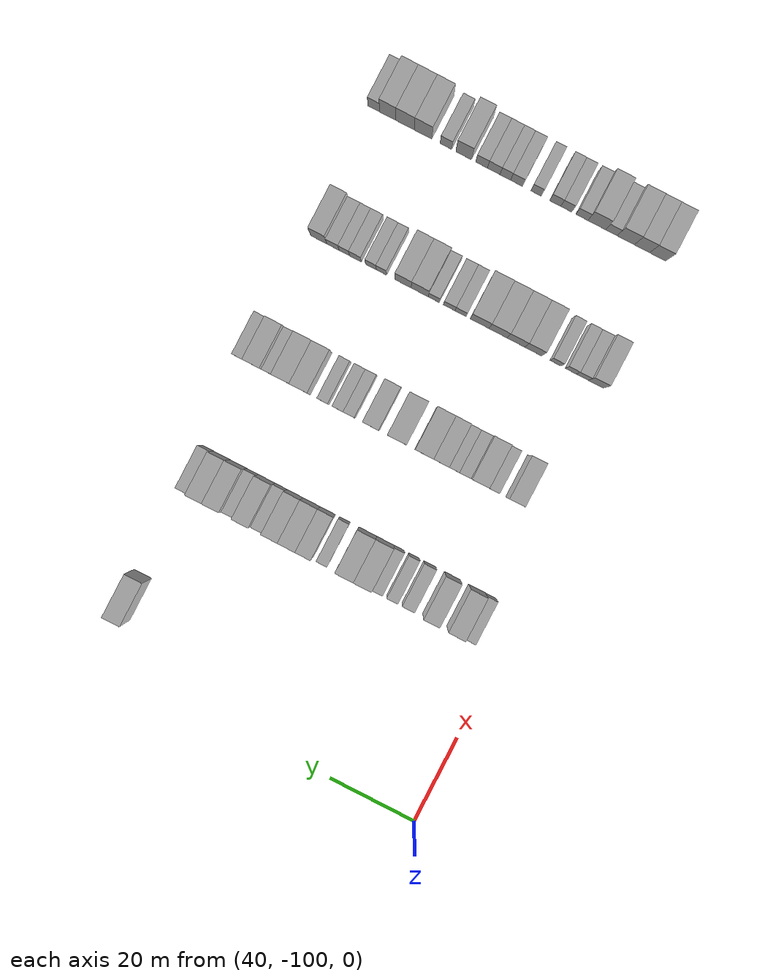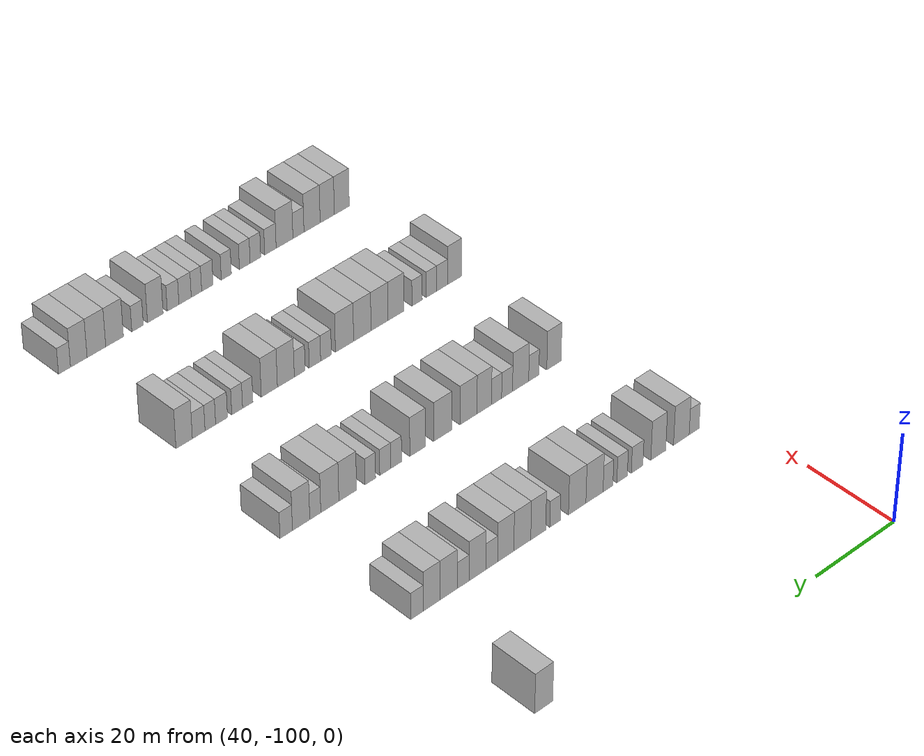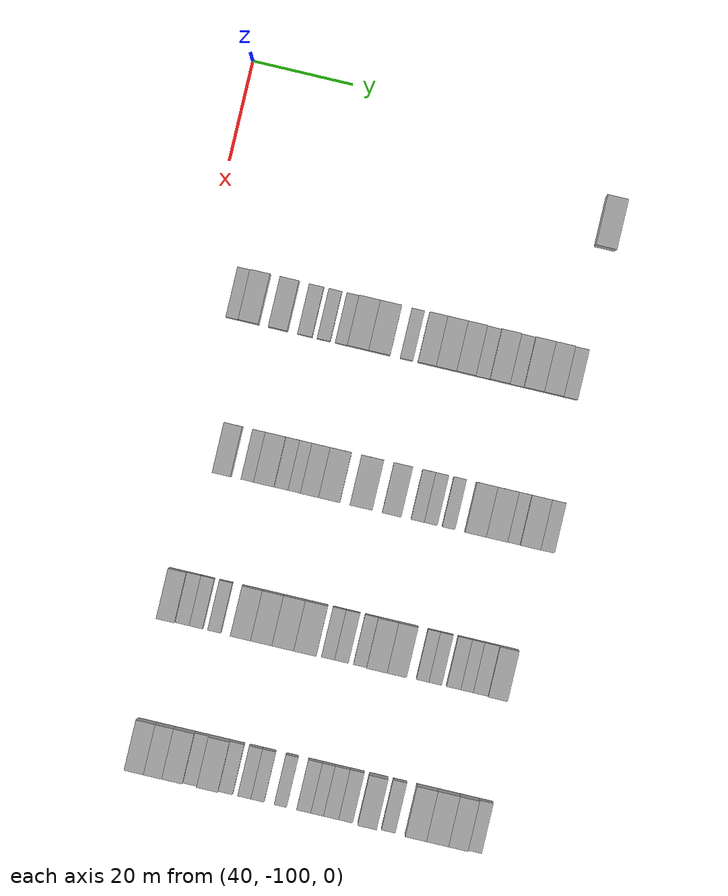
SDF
<sdf version="1.6">
 <world name="default">
  <model name="building_336">
   <static>1</static>
   <pose>55.0000 -24.7894 0 0.000000 0.000000 0.000000</pose>
   <link name="link">
    <pose>0 0 4.50 0 0 0</pose>
    <collision name="collision"><geometry><box><size>10.0000 4.1564 9.0000</size></box></geometry></collision>
    <visual name="visual">
     <cast_shadows>0</cast_shadows>
     <geometry><box><size>10.0000 4.1564 9.0000</size></box></geometry>
     <material>
      <script>
       <uri>model://HANNAS_wall/materials/scripts</uri>
       <uri>model://HANNAS_wall/materials/textures</uri>
       <name>vrc/HANNAS_wall</name>
      </script>
     </material>
    </visual>
   </link>
  </model>
  <model name="building_553">
   <static>1</static>
   <pose>85.0000 -92.2404 0 0.000000 0.000000 0.000000</pose>
   <link name="link">
    <pose>0 0 3.00 0 0 0</pose>
    <collision name="collision"><geometry><box><size>10.0000 2.5375 6.0000</size></box></geometry></collision>
    <visual name="visual">
     <cast_shadows>0</cast_shadows>
     <geometry><box><size>10.0000 2.5375 6.0000</size></box></geometry>
     <material>
      <script>
       <uri>model://HANNAS_wall/materials/scripts</uri>
       <uri>model://HANNAS_wall/materials/textures</uri>
       <name>vrc/HANNAS_wall</name>
      </script>
     </material>
    </visual>
   </link>
  </model>
  <model name="building_554">
   <static>1</static>
   <pose>85.0000 -88.9744 0 0.000000 0.000000 0.000000</pose>
   <link name="link">
    <pose>0 0 4.50 0 0 0</pose>
    <collision name="collision"><geometry><box><size>10.0000 3.9943 9.0000</size></box></geometry></collision>
    <visual name="visual">
     <cast_shadows>0</cast_shadows>
     <geometry><box><size>10.0000 3.9943 9.0000</size></box></geometry>
     <material>
      <script>
       <uri>model://HANNAS_wall/materials/scripts</uri>
       <uri>model://HANNAS_wall/materials/textures</uri>
       <name>vrc/HANNAS_wall</name>
      </script>
     </material>
    </visual>
   </link>
  </model>
  <model name="building_555">
   <static>1</static>
   <pose>85.0000 -83.0957 0 0.000000 0.000000 0.000000</pose>
   <link name="link">
    <pose>0 0 4.50 0 0 0</pose>
    <collision name="collision"><geometry><box><size>10.0000 3.7630 9.0000</size></box></geometry></collision>
    <visual name="visual">
     <cast_shadows>0</cast_shadows>
     <geometry><box><size>10.0000 3.7630 9.0000</size></box></geometry>
     <material>
      <script>
       <uri>model://HANNAS_wall/materials/scripts</uri>
       <uri>model://HANNAS_wall/materials/textures</uri>
       <name>vrc/HANNAS_wall</name>
      </script>
     </material>
    </visual>
   </link>
  </model>
  <model name="building_556">
   <static>1</static>
   <pose>85.0000 -77.7588 0 0.000000 0.000000 0.000000</pose>
   <link name="link">
    <pose>0 0 3.00 0 0 0</pose>
    <collision name="collision"><geometry><box><size>10.0000 2.9109 6.0000</size></box></geometry></collision>
    <visual name="visual">
     <cast_shadows>0</cast_shadows>
     <geometry><box><size>10.0000 2.9109 6.0000</size></box></geometry>
     <material>
      <script>
       <uri>model://HANNAS_wall/materials/scripts</uri>
       <uri>model://HANNAS_wall/materials/textures</uri>
       <name>vrc/HANNAS_wall</name>
      </script>
     </material>
    </visual>
   </link>
  </model>
  <model name="building_557">
   <static>1</static>
   <pose>85.0000 -73.9956 0 0.000000 0.000000 0.000000</pose>
   <link name="link">
    <pose>0 0 3.00 0 0 0</pose>
    <collision name="collision"><geometry><box><size>10.0000 2.6154 6.0000</size></box></geometry></collision>
    <visual name="visual">
     <cast_shadows>0</cast_shadows>
     <geometry><box><size>10.0000 2.6154 6.0000</size></box></geometry>
     <material>
      <script>
       <uri>model://HANNAS_wall/materials/scripts</uri>
       <uri>model://HANNAS_wall/materials/textures</uri>
       <name>vrc/HANNAS_wall</name>
      </script>
     </material>
    </visual>
   </link>
  </model>
  <model name="building_558">
   <static>1</static>
   <pose>85.0000 -70.4703 0 0.000000 0.000000 0.000000</pose>
   <link name="link">
    <pose>0 0 3.00 0 0 0</pose>
    <collision name="collision"><geometry><box><size>10.0000 2.4352 6.0000</size></box></geometry></collision>
    <visual name="visual">
     <cast_shadows>0</cast_shadows>
     <geometry><box><size>10.0000 2.4352 6.0000</size></box></geometry>
     <material>
      <script>
       <uri>model://HANNAS_wall/materials/scripts</uri>
       <uri>model://HANNAS_wall/materials/textures</uri>
       <name>vrc/HANNAS_wall</name>
      </script>
     </material>
    </visual>
   </link>
  </model>
  <model name="building_559">
   <static>1</static>
   <pose>85.0000 -67.1309 0 0.000000 0.000000 0.000000</pose>
   <link name="link">
    <pose>0 0 4.50 0 0 0</pose>
    <collision name="collision"><geometry><box><size>10.0000 4.2436 9.0000</size></box></geometry></collision>
    <visual name="visual">
     <cast_shadows>0</cast_shadows>
     <geometry><box><size>10.0000 4.2436 9.0000</size></box></geometry>
     <material>
      <script>
       <uri>model://HANNAS_wall/materials/scripts</uri>
       <uri>model://HANNAS_wall/materials/textures</uri>
       <name>vrc/HANNAS_wall</name>
      </script>
     </material>
    </visual>
   </link>
  </model>
  <model name="building_560">
   <static>1</static>
   <pose>85.0000 -62.8690 0 0.000000 0.000000 0.000000</pose>
   <link name="link">
    <pose>0 0 4.50 0 0 0</pose>
    <collision name="collision"><geometry><box><size>10.0000 4.2803 9.0000</size></box></geometry></collision>
    <visual name="visual">
     <cast_shadows>0</cast_shadows>
     <geometry><box><size>10.0000 4.2803 9.0000</size></box></geometry>
     <material>
      <script>
       <uri>model://HANNAS_wall/materials/scripts</uri>
       <uri>model://HANNAS_wall/materials/textures</uri>
       <name>vrc/HANNAS_wall</name>
      </script>
     </material>
    </visual>
   </link>
  </model>
  <model name="building_561">
   <static>1</static>
   <pose>85.0000 -57.4591 0 0.000000 0.000000 0.000000</pose>
   <link name="link">
    <pose>0 0 3.00 0 0 0</pose>
    <collision name="collision"><geometry><box><size>10.0000 2.5393 6.0000</size></box></geometry></collision>
    <visual name="visual">
     <cast_shadows>0</cast_shadows>
     <geometry><box><size>10.0000 2.5393 6.0000</size></box></geometry>
     <material>
      <script>
       <uri>model://HANNAS_wall/materials/scripts</uri>
       <uri>model://HANNAS_wall/materials/textures</uri>
       <name>vrc/HANNAS_wall</name>
      </script>
     </material>
    </visual>
   </link>
  </model>
  <model name="building_562">
   <static>1</static>
   <pose>85.0000 -53.3812 0 0.000000 0.000000 0.000000</pose>
   <link name="link">
    <pose>0 0 4.50 0 0 0</pose>
    <collision name="collision"><geometry><box><size>10.0000 3.6165 9.0000</size></box></geometry></collision>
    <visual name="visual">
     <cast_shadows>0</cast_shadows>
     <geometry><box><size>10.0000 3.6165 9.0000</size></box></geometry>
     <material>
      <script>
       <uri>model://HANNAS_wall/materials/scripts</uri>
       <uri>model://HANNAS_wall/materials/textures</uri>
       <name>vrc/HANNAS_wall</name>
      </script>
     </material>
    </visual>
   </link>
  </model>
  <model name="building_563">
   <static>1</static>
   <pose>85.0000 -49.5403 0 0.000000 0.000000 0.000000</pose>
   <link name="link">
    <pose>0 0 4.50 0 0 0</pose>
    <collision name="collision"><geometry><box><size>10.0000 4.0652 9.0000</size></box></geometry></collision>
    <visual name="visual">
     <cast_shadows>0</cast_shadows>
     <geometry><box><size>10.0000 4.0652 9.0000</size></box></geometry>
     <material>
      <script>
       <uri>model://HANNAS_wall/materials/scripts</uri>
       <uri>model://HANNAS_wall/materials/textures</uri>
       <name>vrc/HANNAS_wall</name>
      </script>
     </material>
    </visual>
   </link>
  </model>
  <model name="building_564">
   <static>1</static>
   <pose>85.0000 -45.5871 0 0.000000 0.000000 0.000000</pose>
   <link name="link">
    <pose>0 0 4.50 0 0 0</pose>
    <collision name="collision"><geometry><box><size>10.0000 3.8412 9.0000</size></box></geometry></collision>
    <visual name="visual">
     <cast_shadows>0</cast_shadows>
     <geometry><box><size>10.0000 3.8412 9.0000</size></box></geometry>
     <material>
      <script>
       <uri>model://HANNAS_wall/materials/scripts</uri>
       <uri>model://HANNAS_wall/materials/textures</uri>
       <name>vrc/HANNAS_wall</name>
      </script>
     </material>
    </visual>
   </link>
  </model>
  <model name="building_565">
   <static>1</static>
   <pose>85.0000 -42.2479 0 0.000000 0.000000 0.000000</pose>
   <link name="link">
    <pose>0 0 3.00 0 0 0</pose>
    <collision name="collision"><geometry><box><size>10.0000 2.8373 6.0000</size></box></geometry></collision>
    <visual name="visual">
     <cast_shadows>0</cast_shadows>
     <geometry><box><size>10.0000 2.8373 6.0000</size></box></geometry>
     <material>
      <script>
       <uri>model://HANNAS_wall/materials/scripts</uri>
       <uri>model://HANNAS_wall/materials/textures</uri>
       <name>vrc/HANNAS_wall</name>
      </script>
     </material>
    </visual>
   </link>
  </model>
  <model name="building_566">
   <static>1</static>
   <pose>85.0000 -38.8470 0 0.000000 0.000000 0.000000</pose>
   <link name="link">
    <pose>0 0 4.50 0 0 0</pose>
    <collision name="collision"><geometry><box><size>10.0000 3.9645 9.0000</size></box></geometry></collision>
    <visual name="visual">
     <cast_shadows>0</cast_shadows>
     <geometry><box><size>10.0000 3.9645 9.0000</size></box></geometry>
     <material>
      <script>
       <uri>model://HANNAS_wall/materials/scripts</uri>
       <uri>model://HANNAS_wall/materials/textures</uri>
       <name>vrc/HANNAS_wall</name>
      </script>
     </material>
    </visual>
   </link>
  </model>
  <model name="building_567">
   <static>1</static>
   <pose>85.0000 -35.4615 0 0.000000 0.000000 0.000000</pose>
   <link name="link">
    <pose>0 0 3.00 0 0 0</pose>
    <collision name="collision"><geometry><box><size>10.0000 2.8064 6.0000</size></box></geometry></collision>
    <visual name="visual">
     <cast_shadows>0</cast_shadows>
     <geometry><box><size>10.0000 2.8064 6.0000</size></box></geometry>
     <material>
      <script>
       <uri>model://HANNAS_wall/materials/scripts</uri>
       <uri>model://HANNAS_wall/materials/textures</uri>
       <name>vrc/HANNAS_wall</name>
      </script>
     </material>
    </visual>
   </link>
  </model>
  <model name="building_568">
   <static>1</static>
   <pose>85.0000 -32.0500 0 0.000000 0.000000 0.000000</pose>
   <link name="link">
    <pose>0 0 4.50 0 0 0</pose>
    <collision name="collision"><geometry><box><size>10.0000 4.0165 9.0000</size></box></geometry></collision>
    <visual name="visual">
     <cast_shadows>0</cast_shadows>
     <geometry><box><size>10.0000 4.0165 9.0000</size></box></geometry>
     <material>
      <script>
       <uri>model://HANNAS_wall/materials/scripts</uri>
       <uri>model://HANNAS_wall/materials/textures</uri>
       <name>vrc/HANNAS_wall</name>
      </script>
     </material>
    </visual>
   </link>
  </model>
  <model name="building_569">
   <static>1</static>
   <pose>85.0000 -28.1025 0 0.000000 0.000000 0.000000</pose>
   <link name="link">
    <pose>0 0 4.50 0 0 0</pose>
    <collision name="collision"><geometry><box><size>10.0000 3.8787 9.0000</size></box></geometry></collision>
    <visual name="visual">
     <cast_shadows>0</cast_shadows>
     <geometry><box><size>10.0000 3.8787 9.0000</size></box></geometry>
     <material>
      <script>
       <uri>model://HANNAS_wall/materials/scripts</uri>
       <uri>model://HANNAS_wall/materials/textures</uri>
       <name>vrc/HANNAS_wall</name>
      </script>
     </material>
    </visual>
   </link>
  </model>
  <model name="building_570">
   <static>1</static>
   <pose>85.0000 -24.7309 0 0.000000 0.000000 0.000000</pose>
   <link name="link">
    <pose>0 0 3.00 0 0 0</pose>
    <collision name="collision"><geometry><box><size>10.0000 2.8644 6.0000</size></box></geometry></collision>
    <visual name="visual">
     <cast_shadows>0</cast_shadows>
     <geometry><box><size>10.0000 2.8644 6.0000</size></box></geometry>
     <material>
      <script>
       <uri>model://HANNAS_wall/materials/scripts</uri>
       <uri>model://HANNAS_wall/materials/textures</uri>
       <name>vrc/HANNAS_wall</name>
      </script>
     </material>
    </visual>
   </link>
  </model>
  <model name="building_783">
   <static>1</static>
   <pose>115.0000 -87.2360 0 0.000000 0.000000 0.000000</pose>
   <link name="link">
    <pose>0 0 4.50 0 0 0</pose>
    <collision name="collision"><geometry><box><size>10.0000 3.6390 9.0000</size></box></geometry></collision>
    <visual name="visual">
     <cast_shadows>0</cast_shadows>
     <geometry><box><size>10.0000 3.6390 9.0000</size></box></geometry>
     <material>
      <script>
       <uri>model://HANNAS_wall/materials/scripts</uri>
       <uri>model://HANNAS_wall/materials/textures</uri>
       <name>vrc/HANNAS_wall</name>
      </script>
     </material>
    </visual>
   </link>
  </model>
  <model name="building_784">
   <static>1</static>
   <pose>115.0000 -82.1194 0 0.000000 0.000000 0.000000</pose>
   <link name="link">
    <pose>0 0 3.00 0 0 0</pose>
    <collision name="collision"><geometry><box><size>10.0000 2.5943 6.0000</size></box></geometry></collision>
    <visual name="visual">
     <cast_shadows>0</cast_shadows>
     <geometry><box><size>10.0000 2.5943 6.0000</size></box></geometry>
     <material>
      <script>
       <uri>model://HANNAS_wall/materials/scripts</uri>
       <uri>model://HANNAS_wall/materials/textures</uri>
       <name>vrc/HANNAS_wall</name>
      </script>
     </material>
    </visual>
   </link>
  </model>
  <model name="building_785">
   <static>1</static>
   <pose>115.0000 -78.7922 0 0.000000 0.000000 0.000000</pose>
   <link name="link">
    <pose>0 0 4.50 0 0 0</pose>
    <collision name="collision"><geometry><box><size>10.0000 4.0600 9.0000</size></box></geometry></collision>
    <visual name="visual">
     <cast_shadows>0</cast_shadows>
     <geometry><box><size>10.0000 4.0600 9.0000</size></box></geometry>
     <material>
      <script>
       <uri>model://HANNAS_wall/materials/scripts</uri>
       <uri>model://HANNAS_wall/materials/textures</uri>
       <name>vrc/HANNAS_wall</name>
      </script>
     </material>
    </visual>
   </link>
  </model>
  <model name="building_786">
   <static>1</static>
   <pose>115.0000 -75.3903 0 0.000000 0.000000 0.000000</pose>
   <link name="link">
    <pose>0 0 3.00 0 0 0</pose>
    <collision name="collision"><geometry><box><size>10.0000 2.7439 6.0000</size></box></geometry></collision>
    <visual name="visual">
     <cast_shadows>0</cast_shadows>
     <geometry><box><size>10.0000 2.7439 6.0000</size></box></geometry>
     <material>
      <script>
       <uri>model://HANNAS_wall/materials/scripts</uri>
       <uri>model://HANNAS_wall/materials/textures</uri>
       <name>vrc/HANNAS_wall</name>
      </script>
     </material>
    </visual>
   </link>
  </model>
  <model name="building_787">
   <static>1</static>
   <pose>115.0000 -72.7684 0 0.000000 0.000000 0.000000</pose>
   <link name="link">
    <pose>0 0 3.00 0 0 0</pose>
    <collision name="collision"><geometry><box><size>10.0000 2.4998 6.0000</size></box></geometry></collision>
    <visual name="visual">
     <cast_shadows>0</cast_shadows>
     <geometry><box><size>10.0000 2.4998 6.0000</size></box></geometry>
     <material>
      <script>
       <uri>model://HANNAS_wall/materials/scripts</uri>
       <uri>model://HANNAS_wall/materials/textures</uri>
       <name>vrc/HANNAS_wall</name>
      </script>
     </material>
    </visual>
   </link>
  </model>
  <model name="building_788">
   <static>1</static>
   <pose>115.0000 -69.7114 0 0.000000 0.000000 0.000000</pose>
   <link name="link">
    <pose>0 0 4.50 0 0 0</pose>
    <collision name="collision"><geometry><box><size>10.0000 3.6142 9.0000</size></box></geometry></collision>
    <visual name="visual">
     <cast_shadows>0</cast_shadows>
     <geometry><box><size>10.0000 3.6142 9.0000</size></box></geometry>
     <material>
      <script>
       <uri>model://HANNAS_wall/materials/scripts</uri>
       <uri>model://HANNAS_wall/materials/textures</uri>
       <name>vrc/HANNAS_wall</name>
      </script>
     </material>
    </visual>
   </link>
  </model>
  <model name="building_789">
   <static>1</static>
   <pose>115.0000 -65.7826 0 0.000000 0.000000 0.000000</pose>
   <link name="link">
    <pose>0 0 4.50 0 0 0</pose>
    <collision name="collision"><geometry><box><size>10.0000 4.2436 9.0000</size></box></geometry></collision>
    <visual name="visual">
     <cast_shadows>0</cast_shadows>
     <geometry><box><size>10.0000 4.2436 9.0000</size></box></geometry>
     <material>
      <script>
       <uri>model://HANNAS_wall/materials/scripts</uri>
       <uri>model://HANNAS_wall/materials/textures</uri>
       <name>vrc/HANNAS_wall</name>
      </script>
     </material>
    </visual>
   </link>
  </model>
  <model name="building_790">
   <static>1</static>
   <pose>115.0000 -59.4343 0 0.000000 0.000000 0.000000</pose>
   <link name="link">
    <pose>0 0 4.50 0 0 0</pose>
    <collision name="collision"><geometry><box><size>10.0000 4.4529 9.0000</size></box></geometry></collision>
    <visual name="visual">
     <cast_shadows>0</cast_shadows>
     <geometry><box><size>10.0000 4.4529 9.0000</size></box></geometry>
     <material>
      <script>
       <uri>model://HANNAS_wall/materials/scripts</uri>
       <uri>model://HANNAS_wall/materials/textures</uri>
       <name>vrc/HANNAS_wall</name>
      </script>
     </material>
    </visual>
   </link>
  </model>
  <model name="building_791">
   <static>1</static>
   <pose>115.0000 -53.3348 0 0.000000 0.000000 0.000000</pose>
   <link name="link">
    <pose>0 0 4.50 0 0 0</pose>
    <collision name="collision"><geometry><box><size>10.0000 3.7462 9.0000</size></box></geometry></collision>
    <visual name="visual">
     <cast_shadows>0</cast_shadows>
     <geometry><box><size>10.0000 3.7462 9.0000</size></box></geometry>
     <material>
      <script>
       <uri>model://HANNAS_wall/materials/scripts</uri>
       <uri>model://HANNAS_wall/materials/textures</uri>
       <name>vrc/HANNAS_wall</name>
      </script>
     </material>
    </visual>
   </link>
  </model>
  <model name="building_792">
   <static>1</static>
   <pose>115.0000 -48.1525 0 0.000000 0.000000 0.000000</pose>
   <link name="link">
    <pose>0 0 3.00 0 0 0</pose>
    <collision name="collision"><geometry><box><size>10.0000 2.6183 6.0000</size></box></geometry></collision>
    <visual name="visual">
     <cast_shadows>0</cast_shadows>
     <geometry><box><size>10.0000 2.6183 6.0000</size></box></geometry>
     <material>
      <script>
       <uri>model://HANNAS_wall/materials/scripts</uri>
       <uri>model://HANNAS_wall/materials/textures</uri>
       <name>vrc/HANNAS_wall</name>
      </script>
     </material>
    </visual>
   </link>
  </model>
  <model name="building_793">
   <static>1</static>
   <pose>115.0000 -45.5397 0 0.000000 0.000000 0.000000</pose>
   <link name="link">
    <pose>0 0 3.00 0 0 0</pose>
    <collision name="collision"><geometry><box><size>10.0000 2.6074 6.0000</size></box></geometry></collision>
    <visual name="visual">
     <cast_shadows>0</cast_shadows>
     <geometry><box><size>10.0000 2.6074 6.0000</size></box></geometry>
     <material>
      <script>
       <uri>model://HANNAS_wall/materials/scripts</uri>
       <uri>model://HANNAS_wall/materials/textures</uri>
       <name>vrc/HANNAS_wall</name>
      </script>
     </material>
    </visual>
   </link>
  </model>
  <model name="building_794">
   <static>1</static>
   <pose>115.0000 -41.9731 0 0.000000 0.000000 0.000000</pose>
   <link name="link">
    <pose>0 0 3.00 0 0 0</pose>
    <collision name="collision"><geometry><box><size>10.0000 2.5257 6.0000</size></box></geometry></collision>
    <visual name="visual">
     <cast_shadows>0</cast_shadows>
     <geometry><box><size>10.0000 2.5257 6.0000</size></box></geometry>
     <material>
      <script>
       <uri>model://HANNAS_wall/materials/scripts</uri>
       <uri>model://HANNAS_wall/materials/textures</uri>
       <name>vrc/HANNAS_wall</name>
      </script>
     </material>
    </visual>
   </link>
  </model>
  <model name="building_795">
   <static>1</static>
   <pose>115.0000 -36.6240 0 0.000000 0.000000 0.000000</pose>
   <link name="link">
    <pose>0 0 4.50 0 0 0</pose>
    <collision name="collision"><geometry><box><size>10.0000 4.1725 9.0000</size></box></geometry></collision>
    <visual name="visual">
     <cast_shadows>0</cast_shadows>
     <geometry><box><size>10.0000 4.1725 9.0000</size></box></geometry>
     <material>
      <script>
       <uri>model://HANNAS_wall/materials/scripts</uri>
       <uri>model://HANNAS_wall/materials/textures</uri>
       <name>vrc/HANNAS_wall</name>
      </script>
     </material>
    </visual>
   </link>
  </model>
  <model name="building_796">
   <static>1</static>
   <pose>115.0000 -32.4187 0 0.000000 0.000000 0.000000</pose>
   <link name="link">
    <pose>0 0 4.50 0 0 0</pose>
    <collision name="collision"><geometry><box><size>10.0000 4.2381 9.0000</size></box></geometry></collision>
    <visual name="visual">
     <cast_shadows>0</cast_shadows>
     <geometry><box><size>10.0000 4.2381 9.0000</size></box></geometry>
     <material>
      <script>
       <uri>model://HANNAS_wall/materials/scripts</uri>
       <uri>model://HANNAS_wall/materials/textures</uri>
       <name>vrc/HANNAS_wall</name>
      </script>
     </material>
    </visual>
   </link>
  </model>
  <model name="building_797">
   <static>1</static>
   <pose>115.0000 -29.0166 0 0.000000 0.000000 0.000000</pose>
   <link name="link">
    <pose>0 0 3.00 0 0 0</pose>
    <collision name="collision"><geometry><box><size>10.0000 2.5663 6.0000</size></box></geometry></collision>
    <visual name="visual">
     <cast_shadows>0</cast_shadows>
     <geometry><box><size>10.0000 2.5663 6.0000</size></box></geometry>
     <material>
      <script>
       <uri>model://HANNAS_wall/materials/scripts</uri>
       <uri>model://HANNAS_wall/materials/textures</uri>
       <name>vrc/HANNAS_wall</name>
      </script>
     </material>
    </visual>
   </link>
  </model>
  <model name="building_798">
   <static>1</static>
   <pose>115.0000 -25.7237 0 0.000000 0.000000 0.000000</pose>
   <link name="link">
    <pose>0 0 4.50 0 0 0</pose>
    <collision name="collision"><geometry><box><size>10.0000 4.0194 9.0000</size></box></geometry></collision>
    <visual name="visual">
     <cast_shadows>0</cast_shadows>
     <geometry><box><size>10.0000 4.0194 9.0000</size></box></geometry>
     <material>
      <script>
       <uri>model://HANNAS_wall/materials/scripts</uri>
       <uri>model://HANNAS_wall/materials/textures</uri>
       <name>vrc/HANNAS_wall</name>
      </script>
     </material>
    </visual>
   </link>
  </model>
  <model name="building_799">
   <static>1</static>
   <pose>115.0000 -22.2759 0 0.000000 0.000000 0.000000</pose>
   <link name="link">
    <pose>0 0 3.00 0 0 0</pose>
    <collision name="collision"><geometry><box><size>10.0000 2.8763 6.0000</size></box></geometry></collision>
    <visual name="visual">
     <cast_shadows>0</cast_shadows>
     <geometry><box><size>10.0000 2.8763 6.0000</size></box></geometry>
     <material>
      <script>
       <uri>model://HANNAS_wall/materials/scripts</uri>
       <uri>model://HANNAS_wall/materials/textures</uri>
       <name>vrc/HANNAS_wall</name>
      </script>
     </material>
    </visual>
   </link>
  </model>
  <model name="building_1022">
   <static>1</static>
   <pose>145.0000 -91.2712 0 0.000000 0.000000 0.000000</pose>
   <link name="link">
    <pose>0 0 4.50 0 0 0</pose>
    <collision name="collision"><geometry><box><size>10.0000 3.6379 9.0000</size></box></geometry></collision>
    <visual name="visual">
     <cast_shadows>0</cast_shadows>
     <geometry><box><size>10.0000 3.6379 9.0000</size></box></geometry>
     <material>
      <script>
       <uri>model://HANNAS_wall/materials/scripts</uri>
       <uri>model://HANNAS_wall/materials/textures</uri>
       <name>vrc/HANNAS_wall</name>
      </script>
     </material>
    </visual>
   </link>
  </model>
  <model name="building_1023">
   <static>1</static>
   <pose>145.0000 -88.0466 0 0.000000 0.000000 0.000000</pose>
   <link name="link">
    <pose>0 0 3.00 0 0 0</pose>
    <collision name="collision"><geometry><box><size>10.0000 2.8114 6.0000</size></box></geometry></collision>
    <visual name="visual">
     <cast_shadows>0</cast_shadows>
     <geometry><box><size>10.0000 2.8114 6.0000</size></box></geometry>
     <material>
      <script>
       <uri>model://HANNAS_wall/materials/scripts</uri>
       <uri>model://HANNAS_wall/materials/textures</uri>
       <name>vrc/HANNAS_wall</name>
      </script>
     </material>
    </visual>
   </link>
  </model>
  <model name="building_1024">
   <static>1</static>
   <pose>145.0000 -85.3098 0 0.000000 0.000000 0.000000</pose>
   <link name="link">
    <pose>0 0 3.00 0 0 0</pose>
    <collision name="collision"><geometry><box><size>10.0000 2.6621 6.0000</size></box></geometry></collision>
    <visual name="visual">
     <cast_shadows>0</cast_shadows>
     <geometry><box><size>10.0000 2.6621 6.0000</size></box></geometry>
     <material>
      <script>
       <uri>model://HANNAS_wall/materials/scripts</uri>
       <uri>model://HANNAS_wall/materials/textures</uri>
       <name>vrc/HANNAS_wall</name>
      </script>
     </material>
    </visual>
   </link>
  </model>
  <model name="building_1025">
   <static>1</static>
   <pose>145.0000 -81.6724 0 0.000000 0.000000 0.000000</pose>
   <link name="link">
    <pose>0 0 3.00 0 0 0</pose>
    <collision name="collision"><geometry><box><size>10.0000 2.6126 6.0000</size></box></geometry></collision>
    <visual name="visual">
     <cast_shadows>0</cast_shadows>
     <geometry><box><size>10.0000 2.6126 6.0000</size></box></geometry>
     <material>
      <script>
       <uri>model://HANNAS_wall/materials/scripts</uri>
       <uri>model://HANNAS_wall/materials/textures</uri>
       <name>vrc/HANNAS_wall</name>
      </script>
     </material>
    </visual>
   </link>
  </model>
  <model name="building_1026">
   <static>1</static>
   <pose>145.0000 -76.3474 0 0.000000 0.000000 0.000000</pose>
   <link name="link">
    <pose>0 0 4.50 0 0 0</pose>
    <collision name="collision"><geometry><box><size>10.0000 4.0376 9.0000</size></box></geometry></collision>
    <visual name="visual">
     <cast_shadows>0</cast_shadows>
     <geometry><box><size>10.0000 4.0376 9.0000</size></box></geometry>
     <material>
      <script>
       <uri>model://HANNAS_wall/materials/scripts</uri>
       <uri>model://HANNAS_wall/materials/textures</uri>
       <name>vrc/HANNAS_wall</name>
      </script>
     </material>
    </visual>
   </link>
  </model>
  <model name="building_1027">
   <static>1</static>
   <pose>145.0000 -72.2160 0 0.000000 0.000000 0.000000</pose>
   <link name="link">
    <pose>0 0 4.50 0 0 0</pose>
    <collision name="collision"><geometry><box><size>10.0000 4.2252 9.0000</size></box></geometry></collision>
    <visual name="visual">
     <cast_shadows>0</cast_shadows>
     <geometry><box><size>10.0000 4.2252 9.0000</size></box></geometry>
     <material>
      <script>
       <uri>model://HANNAS_wall/materials/scripts</uri>
       <uri>model://HANNAS_wall/materials/textures</uri>
       <name>vrc/HANNAS_wall</name>
      </script>
     </material>
    </visual>
   </link>
  </model>
  <model name="building_1028">
   <static>1</static>
   <pose>145.0000 -67.9359 0 0.000000 0.000000 0.000000</pose>
   <link name="link">
    <pose>0 0 4.50 0 0 0</pose>
    <collision name="collision"><geometry><box><size>10.0000 4.3350 9.0000</size></box></geometry></collision>
    <visual name="visual">
     <cast_shadows>0</cast_shadows>
     <geometry><box><size>10.0000 4.3350 9.0000</size></box></geometry>
     <material>
      <script>
       <uri>model://HANNAS_wall/materials/scripts</uri>
       <uri>model://HANNAS_wall/materials/textures</uri>
       <name>vrc/HANNAS_wall</name>
      </script>
     </material>
    </visual>
   </link>
  </model>
  <model name="building_1029">
   <static>1</static>
   <pose>145.0000 -63.5243 0 0.000000 0.000000 0.000000</pose>
   <link name="link">
    <pose>0 0 4.50 0 0 0</pose>
    <collision name="collision"><geometry><box><size>10.0000 4.4882 9.0000</size></box></geometry></collision>
    <visual name="visual">
     <cast_shadows>0</cast_shadows>
     <geometry><box><size>10.0000 4.4882 9.0000</size></box></geometry>
     <material>
      <script>
       <uri>model://HANNAS_wall/materials/scripts</uri>
       <uri>model://HANNAS_wall/materials/textures</uri>
       <name>vrc/HANNAS_wall</name>
      </script>
     </material>
    </visual>
   </link>
  </model>
  <model name="building_1030">
   <static>1</static>
   <pose>145.0000 -58.9701 0 0.000000 0.000000 0.000000</pose>
   <link name="link">
    <pose>0 0 3.00 0 0 0</pose>
    <collision name="collision"><geometry><box><size>10.0000 2.6203 6.0000</size></box></geometry></collision>
    <visual name="visual">
     <cast_shadows>0</cast_shadows>
     <geometry><box><size>10.0000 2.6203 6.0000</size></box></geometry>
     <material>
      <script>
       <uri>model://HANNAS_wall/materials/scripts</uri>
       <uri>model://HANNAS_wall/materials/textures</uri>
       <name>vrc/HANNAS_wall</name>
      </script>
     </material>
    </visual>
   </link>
  </model>
  <model name="building_1031">
   <static>1</static>
   <pose>145.0000 -56.2686 0 0.000000 0.000000 0.000000</pose>
   <link name="link">
    <pose>0 0 3.00 0 0 0</pose>
    <collision name="collision"><geometry><box><size>10.0000 2.7827 6.0000</size></box></geometry></collision>
    <visual name="visual">
     <cast_shadows>0</cast_shadows>
     <geometry><box><size>10.0000 2.7827 6.0000</size></box></geometry>
     <material>
      <script>
       <uri>model://HANNAS_wall/materials/scripts</uri>
       <uri>model://HANNAS_wall/materials/textures</uri>
       <name>vrc/HANNAS_wall</name>
      </script>
     </material>
    </visual>
   </link>
  </model>
  <model name="building_1032">
   <static>1</static>
   <pose>145.0000 -52.5635 0 0.000000 0.000000 0.000000</pose>
   <link name="link">
    <pose>0 0 3.00 0 0 0</pose>
    <collision name="collision"><geometry><box><size>10.0000 2.6275 6.0000</size></box></geometry></collision>
    <visual name="visual">
     <cast_shadows>0</cast_shadows>
     <geometry><box><size>10.0000 2.6275 6.0000</size></box></geometry>
     <material>
      <script>
       <uri>model://HANNAS_wall/materials/scripts</uri>
       <uri>model://HANNAS_wall/materials/textures</uri>
       <name>vrc/HANNAS_wall</name>
      </script>
     </material>
    </visual>
   </link>
  </model>
  <model name="building_1033">
   <static>1</static>
   <pose>145.0000 -49.2096 0 0.000000 0.000000 0.000000</pose>
   <link name="link">
    <pose>0 0 4.50 0 0 0</pose>
    <collision name="collision"><geometry><box><size>10.0000 4.0802 9.0000</size></box></geometry></collision>
    <visual name="visual">
     <cast_shadows>0</cast_shadows>
     <geometry><box><size>10.0000 4.0802 9.0000</size></box></geometry>
     <material>
      <script>
       <uri>model://HANNAS_wall/materials/scripts</uri>
       <uri>model://HANNAS_wall/materials/textures</uri>
       <name>vrc/HANNAS_wall</name>
      </script>
     </material>
    </visual>
   </link>
  </model>
  <model name="building_1034">
   <static>1</static>
   <pose>145.0000 -45.2372 0 0.000000 0.000000 0.000000</pose>
   <link name="link">
    <pose>0 0 4.50 0 0 0</pose>
    <collision name="collision"><geometry><box><size>10.0000 3.8645 9.0000</size></box></geometry></collision>
    <visual name="visual">
     <cast_shadows>0</cast_shadows>
     <geometry><box><size>10.0000 3.8645 9.0000</size></box></geometry>
     <material>
      <script>
       <uri>model://HANNAS_wall/materials/scripts</uri>
       <uri>model://HANNAS_wall/materials/textures</uri>
       <name>vrc/HANNAS_wall</name>
      </script>
     </material>
    </visual>
   </link>
  </model>
  <model name="building_1035">
   <static>1</static>
   <pose>145.0000 -40.0737 0 0.000000 0.000000 0.000000</pose>
   <link name="link">
    <pose>0 0 3.00 0 0 0</pose>
    <collision name="collision"><geometry><box><size>10.0000 2.4626 6.0000</size></box></geometry></collision>
    <visual name="visual">
     <cast_shadows>0</cast_shadows>
     <geometry><box><size>10.0000 2.4626 6.0000</size></box></geometry>
     <material>
      <script>
       <uri>model://HANNAS_wall/materials/scripts</uri>
       <uri>model://HANNAS_wall/materials/textures</uri>
       <name>vrc/HANNAS_wall</name>
      </script>
     </material>
    </visual>
   </link>
  </model>
  <model name="building_1036">
   <static>1</static>
   <pose>145.0000 -37.5600 0 0.000000 0.000000 0.000000</pose>
   <link name="link">
    <pose>0 0 3.00 0 0 0</pose>
    <collision name="collision"><geometry><box><size>10.0000 2.5648 6.0000</size></box></geometry></collision>
    <visual name="visual">
     <cast_shadows>0</cast_shadows>
     <geometry><box><size>10.0000 2.5648 6.0000</size></box></geometry>
     <material>
      <script>
       <uri>model://HANNAS_wall/materials/scripts</uri>
       <uri>model://HANNAS_wall/materials/textures</uri>
       <name>vrc/HANNAS_wall</name>
      </script>
     </material>
    </visual>
   </link>
  </model>
  <model name="building_1037">
   <static>1</static>
   <pose>145.0000 -33.8760 0 0.000000 0.000000 0.000000</pose>
   <link name="link">
    <pose>0 0 3.00 0 0 0</pose>
    <collision name="collision"><geometry><box><size>10.0000 2.8031 6.0000</size></box></geometry></collision>
    <visual name="visual">
     <cast_shadows>0</cast_shadows>
     <geometry><box><size>10.0000 2.8031 6.0000</size></box></geometry>
     <material>
      <script>
       <uri>model://HANNAS_wall/materials/scripts</uri>
       <uri>model://HANNAS_wall/materials/textures</uri>
       <name>vrc/HANNAS_wall</name>
      </script>
     </material>
    </visual>
   </link>
  </model>
  <model name="building_1038">
   <static>1</static>
   <pose>145.0000 -31.2295 0 0.000000 0.000000 0.000000</pose>
   <link name="link">
    <pose>0 0 3.00 0 0 0</pose>
    <collision name="collision"><geometry><box><size>10.0000 2.4900 6.0000</size></box></geometry></collision>
    <visual name="visual">
     <cast_shadows>0</cast_shadows>
     <geometry><box><size>10.0000 2.4900 6.0000</size></box></geometry>
     <material>
      <script>
       <uri>model://HANNAS_wall/materials/scripts</uri>
       <uri>model://HANNAS_wall/materials/textures</uri>
       <name>vrc/HANNAS_wall</name>
      </script>
     </material>
    </visual>
   </link>
  </model>
  <model name="building_1039">
   <static>1</static>
   <pose>145.0000 -28.5041 0 0.000000 0.000000 0.000000</pose>
   <link name="link">
    <pose>0 0 3.00 0 0 0</pose>
    <collision name="collision"><geometry><box><size>10.0000 2.9609 6.0000</size></box></geometry></collision>
    <visual name="visual">
     <cast_shadows>0</cast_shadows>
     <geometry><box><size>10.0000 2.9609 6.0000</size></box></geometry>
     <material>
      <script>
       <uri>model://HANNAS_wall/materials/scripts</uri>
       <uri>model://HANNAS_wall/materials/textures</uri>
       <name>vrc/HANNAS_wall</name>
      </script>
     </material>
    </visual>
   </link>
  </model>
  <model name="building_1040">
   <static>1</static>
   <pose>145.0000 -25.1189 0 0.000000 0.000000 0.000000</pose>
   <link name="link">
    <pose>0 0 4.50 0 0 0</pose>
    <collision name="collision"><geometry><box><size>10.0000 3.8094 9.0000</size></box></geometry></collision>
    <visual name="visual">
     <cast_shadows>0</cast_shadows>
     <geometry><box><size>10.0000 3.8094 9.0000</size></box></geometry>
     <material>
      <script>
       <uri>model://HANNAS_wall/materials/scripts</uri>
       <uri>model://HANNAS_wall/materials/textures</uri>
       <name>vrc/HANNAS_wall</name>
      </script>
     </material>
    </visual>
   </link>
  </model>
  <model name="building_1251">
   <static>1</static>
   <pose>175.0000 -90.4703 0 0.000000 0.000000 0.000000</pose>
   <link name="link">
    <pose>0 0 4.50 0 0 0</pose>
    <collision name="collision"><geometry><box><size>10.0000 3.8427 9.0000</size></box></geometry></collision>
    <visual name="visual">
     <cast_shadows>0</cast_shadows>
     <geometry><box><size>10.0000 3.8427 9.0000</size></box></geometry>
     <material>
      <script>
       <uri>model://HANNAS_wall/materials/scripts</uri>
       <uri>model://HANNAS_wall/materials/textures</uri>
       <name>vrc/HANNAS_wall</name>
      </script>
     </material>
    </visual>
   </link>
  </model>
  <model name="building_1252">
   <static>1</static>
   <pose>175.0000 -86.7318 0 0.000000 0.000000 0.000000</pose>
   <link name="link">
    <pose>0 0 4.50 0 0 0</pose>
    <collision name="collision"><geometry><box><size>10.0000 3.6344 9.0000</size></box></geometry></collision>
    <visual name="visual">
     <cast_shadows>0</cast_shadows>
     <geometry><box><size>10.0000 3.6344 9.0000</size></box></geometry>
     <material>
      <script>
       <uri>model://HANNAS_wall/materials/scripts</uri>
       <uri>model://HANNAS_wall/materials/textures</uri>
       <name>vrc/HANNAS_wall</name>
      </script>
     </material>
    </visual>
   </link>
  </model>
  <model name="building_1253">
   <static>1</static>
   <pose>175.0000 -82.8565 0 0.000000 0.000000 0.000000</pose>
   <link name="link">
    <pose>0 0 4.50 0 0 0</pose>
    <collision name="collision"><geometry><box><size>10.0000 4.1161 9.0000</size></box></geometry></collision>
    <visual name="visual">
     <cast_shadows>0</cast_shadows>
     <geometry><box><size>10.0000 4.1161 9.0000</size></box></geometry>
     <material>
      <script>
       <uri>model://HANNAS_wall/materials/scripts</uri>
       <uri>model://HANNAS_wall/materials/textures</uri>
       <name>vrc/HANNAS_wall</name>
      </script>
     </material>
    </visual>
   </link>
  </model>
  <model name="building_1254">
   <static>1</static>
   <pose>175.0000 -79.3971 0 0.000000 0.000000 0.000000</pose>
   <link name="link">
    <pose>0 0 3.00 0 0 0</pose>
    <collision name="collision"><geometry><box><size>10.0000 2.8028 6.0000</size></box></geometry></collision>
    <visual name="visual">
     <cast_shadows>0</cast_shadows>
     <geometry><box><size>10.0000 2.8028 6.0000</size></box></geometry>
     <material>
      <script>
       <uri>model://HANNAS_wall/materials/scripts</uri>
       <uri>model://HANNAS_wall/materials/textures</uri>
       <name>vrc/HANNAS_wall</name>
      </script>
     </material>
    </visual>
   </link>
  </model>
  <model name="building_1255">
   <static>1</static>
   <pose>175.0000 -75.8811 0 0.000000 0.000000 0.000000</pose>
   <link name="link">
    <pose>0 0 4.50 0 0 0</pose>
    <collision name="collision"><geometry><box><size>10.0000 4.2291 9.0000</size></box></geometry></collision>
    <visual name="visual">
     <cast_shadows>0</cast_shadows>
     <geometry><box><size>10.0000 4.2291 9.0000</size></box></geometry>
     <material>
      <script>
       <uri>model://HANNAS_wall/materials/scripts</uri>
       <uri>model://HANNAS_wall/materials/textures</uri>
       <name>vrc/HANNAS_wall</name>
      </script>
     </material>
    </visual>
   </link>
  </model>
  <model name="building_1256">
   <static>1</static>
   <pose>175.0000 -72.3378 0 0.000000 0.000000 0.000000</pose>
   <link name="link">
    <pose>0 0 3.00 0 0 0</pose>
    <collision name="collision"><geometry><box><size>10.0000 2.8575 6.0000</size></box></geometry></collision>
    <visual name="visual">
     <cast_shadows>0</cast_shadows>
     <geometry><box><size>10.0000 2.8575 6.0000</size></box></geometry>
     <material>
      <script>
       <uri>model://HANNAS_wall/materials/scripts</uri>
       <uri>model://HANNAS_wall/materials/textures</uri>
       <name>vrc/HANNAS_wall</name>
      </script>
     </material>
    </visual>
   </link>
  </model>
  <model name="building_1257">
   <static>1</static>
   <pose>175.0000 -68.5850 0 0.000000 0.000000 0.000000</pose>
   <link name="link">
    <pose>0 0 3.00 0 0 0</pose>
    <collision name="collision"><geometry><box><size>10.0000 2.6481 6.0000</size></box></geometry></collision>
    <visual name="visual">
     <cast_shadows>0</cast_shadows>
     <geometry><box><size>10.0000 2.6481 6.0000</size></box></geometry>
     <material>
      <script>
       <uri>model://HANNAS_wall/materials/scripts</uri>
       <uri>model://HANNAS_wall/materials/textures</uri>
       <name>vrc/HANNAS_wall</name>
      </script>
     </material>
    </visual>
   </link>
  </model>
  <model name="building_1258">
   <static>1</static>
   <pose>175.0000 -65.9376 0 0.000000 0.000000 0.000000</pose>
   <link name="link">
    <pose>0 0 3.00 0 0 0</pose>
    <collision name="collision"><geometry><box><size>10.0000 2.6465 6.0000</size></box></geometry></collision>
    <visual name="visual">
     <cast_shadows>0</cast_shadows>
     <geometry><box><size>10.0000 2.6465 6.0000</size></box></geometry>
     <material>
      <script>
       <uri>model://HANNAS_wall/materials/scripts</uri>
       <uri>model://HANNAS_wall/materials/textures</uri>
       <name>vrc/HANNAS_wall</name>
      </script>
     </material>
    </visual>
   </link>
  </model>
  <model name="building_1259">
   <static>1</static>
   <pose>175.0000 -61.3724 0 0.000000 0.000000 0.000000</pose>
   <link name="link">
    <pose>0 0 3.00 0 0 0</pose>
    <collision name="collision"><geometry><box><size>10.0000 2.4839 6.0000</size></box></geometry></collision>
    <visual name="visual">
     <cast_shadows>0</cast_shadows>
     <geometry><box><size>10.0000 2.4839 6.0000</size></box></geometry>
     <material>
      <script>
       <uri>model://HANNAS_wall/materials/scripts</uri>
       <uri>model://HANNAS_wall/materials/textures</uri>
       <name>vrc/HANNAS_wall</name>
      </script>
     </material>
    </visual>
   </link>
  </model>
  <model name="building_1260">
   <static>1</static>
   <pose>175.0000 -56.7192 0 0.000000 0.000000 0.000000</pose>
   <link name="link">
    <pose>0 0 3.00 0 0 0</pose>
    <collision name="collision"><geometry><box><size>10.0000 2.8227 6.0000</size></box></geometry></collision>
    <visual name="visual">
     <cast_shadows>0</cast_shadows>
     <geometry><box><size>10.0000 2.8227 6.0000</size></box></geometry>
     <material>
      <script>
       <uri>model://HANNAS_wall/materials/scripts</uri>
       <uri>model://HANNAS_wall/materials/textures</uri>
       <name>vrc/HANNAS_wall</name>
      </script>
     </material>
    </visual>
   </link>
  </model>
  <model name="building_1261">
   <static>1</static>
   <pose>175.0000 -54.0393 0 0.000000 0.000000 0.000000</pose>
   <link name="link">
    <pose>0 0 3.00 0 0 0</pose>
    <collision name="collision"><geometry><box><size>10.0000 2.5369 6.0000</size></box></geometry></collision>
    <visual name="visual">
     <cast_shadows>0</cast_shadows>
     <geometry><box><size>10.0000 2.5369 6.0000</size></box></geometry>
     <material>
      <script>
       <uri>model://HANNAS_wall/materials/scripts</uri>
       <uri>model://HANNAS_wall/materials/textures</uri>
       <name>vrc/HANNAS_wall</name>
      </script>
     </material>
    </visual>
   </link>
  </model>
  <model name="building_1262">
   <static>1</static>
   <pose>175.0000 -51.2727 0 0.000000 0.000000 0.000000</pose>
   <link name="link">
    <pose>0 0 3.00 0 0 0</pose>
    <collision name="collision"><geometry><box><size>10.0000 2.9964 6.0000</size></box></geometry></collision>
    <visual name="visual">
     <cast_shadows>0</cast_shadows>
     <geometry><box><size>10.0000 2.9964 6.0000</size></box></geometry>
     <material>
      <script>
       <uri>model://HANNAS_wall/materials/scripts</uri>
       <uri>model://HANNAS_wall/materials/textures</uri>
       <name>vrc/HANNAS_wall</name>
      </script>
     </material>
    </visual>
   </link>
  </model>
  <model name="building_1263">
   <static>1</static>
   <pose>175.0000 -48.3630 0 0.000000 0.000000 0.000000</pose>
   <link name="link">
    <pose>0 0 3.00 0 0 0</pose>
    <collision name="collision"><geometry><box><size>10.0000 2.8229 6.0000</size></box></geometry></collision>
    <visual name="visual">
     <cast_shadows>0</cast_shadows>
     <geometry><box><size>10.0000 2.8229 6.0000</size></box></geometry>
     <material>
      <script>
       <uri>model://HANNAS_wall/materials/scripts</uri>
       <uri>model://HANNAS_wall/materials/textures</uri>
       <name>vrc/HANNAS_wall</name>
      </script>
     </material>
    </visual>
   </link>
  </model>
  <model name="building_1264">
   <static>1</static>
   <pose>175.0000 -44.0742 0 0.000000 0.000000 0.000000</pose>
   <link name="link">
    <pose>0 0 4.50 0 0 0</pose>
    <collision name="collision"><geometry><box><size>10.0000 3.7548 9.0000</size></box></geometry></collision>
    <visual name="visual">
     <cast_shadows>0</cast_shadows>
     <geometry><box><size>10.0000 3.7548 9.0000</size></box></geometry>
     <material>
      <script>
       <uri>model://HANNAS_wall/materials/scripts</uri>
       <uri>model://HANNAS_wall/materials/textures</uri>
       <name>vrc/HANNAS_wall</name>
      </script>
     </material>
    </visual>
   </link>
  </model>
  <model name="building_1265">
   <static>1</static>
   <pose>175.0000 -39.8265 0 0.000000 0.000000 0.000000</pose>
   <link name="link">
    <pose>0 0 3.00 0 0 0</pose>
    <collision name="collision"><geometry><box><size>10.0000 2.7406 6.0000</size></box></geometry></collision>
    <visual name="visual">
     <cast_shadows>0</cast_shadows>
     <geometry><box><size>10.0000 2.7406 6.0000</size></box></geometry>
     <material>
      <script>
       <uri>model://HANNAS_wall/materials/scripts</uri>
       <uri>model://HANNAS_wall/materials/textures</uri>
       <name>vrc/HANNAS_wall</name>
      </script>
     </material>
    </visual>
   </link>
  </model>
  <model name="building_1266">
   <static>1</static>
   <pose>175.0000 -34.3616 0 0.000000 0.000000 0.000000</pose>
   <link name="link">
    <pose>0 0 4.50 0 0 0</pose>
    <collision name="collision"><geometry><box><size>10.0000 4.1892 9.0000</size></box></geometry></collision>
    <visual name="visual">
     <cast_shadows>0</cast_shadows>
     <geometry><box><size>10.0000 4.1892 9.0000</size></box></geometry>
     <material>
      <script>
       <uri>model://HANNAS_wall/materials/scripts</uri>
       <uri>model://HANNAS_wall/materials/textures</uri>
       <name>vrc/HANNAS_wall</name>
      </script>
     </material>
    </visual>
   </link>
  </model>
  <model name="building_1267">
   <static>1</static>
   <pose>175.0000 -30.0699 0 0.000000 0.000000 0.000000</pose>
   <link name="link">
    <pose>0 0 4.50 0 0 0</pose>
    <collision name="collision"><geometry><box><size>10.0000 4.3941 9.0000</size></box></geometry></collision>
    <visual name="visual">
     <cast_shadows>0</cast_shadows>
     <geometry><box><size>10.0000 4.3941 9.0000</size></box></geometry>
     <material>
      <script>
       <uri>model://HANNAS_wall/materials/scripts</uri>
       <uri>model://HANNAS_wall/materials/textures</uri>
       <name>vrc/HANNAS_wall</name>
      </script>
     </material>
    </visual>
   </link>
  </model>
  <model name="building_1268">
   <static>1</static>
   <pose>175.0000 -25.9343 0 0.000000 0.000000 0.000000</pose>
   <link name="link">
    <pose>0 0 4.50 0 0 0</pose>
    <collision name="collision"><geometry><box><size>10.0000 3.8772 9.0000</size></box></geometry></collision>
    <visual name="visual">
     <cast_shadows>0</cast_shadows>
     <geometry><box><size>10.0000 3.8772 9.0000</size></box></geometry>
     <material>
      <script>
       <uri>model://HANNAS_wall/materials/scripts</uri>
       <uri>model://HANNAS_wall/materials/textures</uri>
       <name>vrc/HANNAS_wall</name>
      </script>
     </material>
    </visual>
   </link>
  </model>
  <model name="building_1269">
   <static>1</static>
   <pose>175.0000 -22.6030 0 0.000000 0.000000 0.000000</pose>
   <link name="link">
    <pose>0 0 3.00 0 0 0</pose>
    <collision name="collision"><geometry><box><size>10.0000 2.7855 6.0000</size></box></geometry></collision>
    <visual name="visual">
     <cast_shadows>0</cast_shadows>
     <geometry><box><size>10.0000 2.7855 6.0000</size></box></geometry>
     <material>
      <script>
       <uri>model://HANNAS_wall/materials/scripts</uri>
       <uri>model://HANNAS_wall/materials/textures</uri>
       <name>vrc/HANNAS_wall</name>
      </script>
     </material>
    </visual>
   </link>
  </model>
 </world>
</sdf>
